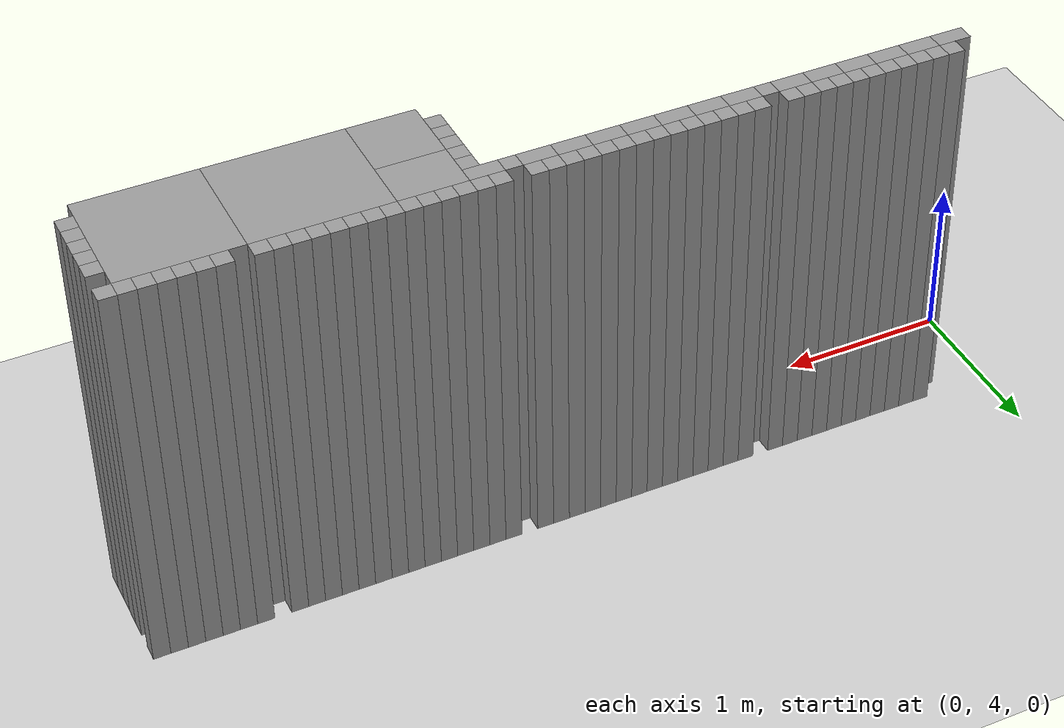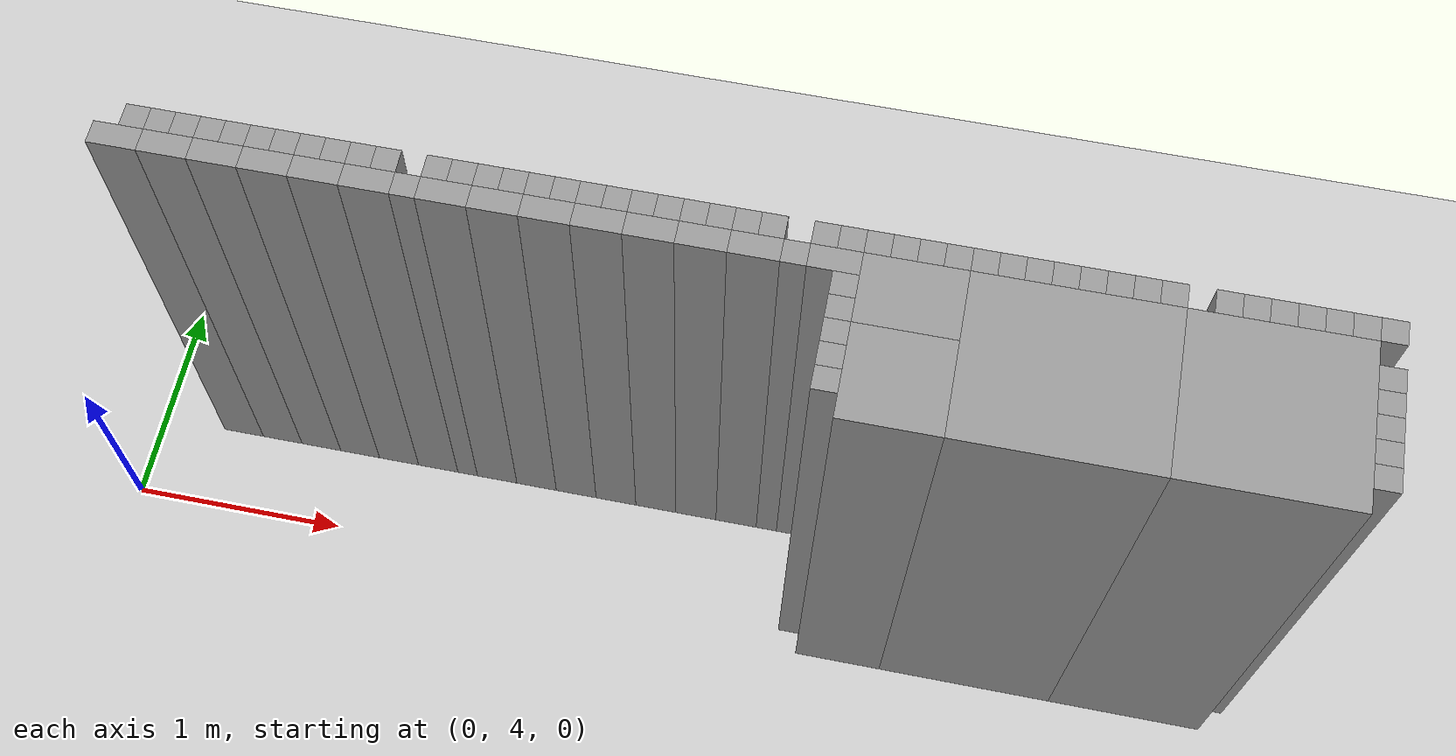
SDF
<sdf version="1.6">
 <world name="default">
  <include><uri>model://sun</uri></include>
  <include><uri>model://ground_plane</uri></include>
  <model name="stage_test">
   <static>1</static>
   <pose>-12 -12 0 0 0 0</pose>
   <link name="Wall_530">
    <pose>12.45 16.55 0 0 0 0</pose>
    <collision name="Wall_530_collision">
     <pose>0 0 1.25 0 0 0</pose>
     <geometry><box><size>0.09999999999999964 0.10000000000000142 2.5</size></box></geometry>
    </collision>
    <visual name="Wall_530_visual">
     <pose>0 0 1.25 0 0 0</pose>
     <geometry><box><size>0.09999999999999964 0.10000000000000142 2.5</size></box></geometry>
     <material>
      <script><uri>file://media/materials/scripts/gazebo.material</uri><name>Gazebo/Grey</name></script>
      <ambient>1 1 1 1</ambient>
     </material>
    </visual>
   </link>
   <link name="Wall_531">
    <pose>12.55 16.55 0 0 0 0</pose>
    <collision name="Wall_531_collision">
     <pose>0 0 1.25 0 0 0</pose>
     <geometry><box><size>0.10000000000000142 0.10000000000000142 2.5</size></box></geometry>
    </collision>
    <visual name="Wall_531_visual">
     <pose>0 0 1.25 0 0 0</pose>
     <geometry><box><size>0.10000000000000142 0.10000000000000142 2.5</size></box></geometry>
     <material>
      <script><uri>file://media/materials/scripts/gazebo.material</uri><name>Gazebo/Grey</name></script>
      <ambient>1 1 1 1</ambient>
     </material>
    </visual>
   </link>
   <link name="Wall_532">
    <pose>12.650000000000002 16.55 0 0 0 0</pose>
    <collision name="Wall_532_collision">
     <pose>0 0 1.25 0 0 0</pose>
     <geometry><box><size>0.09999999999999964 0.10000000000000142 2.5</size></box></geometry>
    </collision>
    <visual name="Wall_532_visual">
     <pose>0 0 1.25 0 0 0</pose>
     <geometry><box><size>0.09999999999999964 0.10000000000000142 2.5</size></box></geometry>
     <material>
      <script><uri>file://media/materials/scripts/gazebo.material</uri><name>Gazebo/Grey</name></script>
      <ambient>1 1 1 1</ambient>
     </material>
    </visual>
   </link>
   <link name="Wall_533">
    <pose>12.75 16.55 0 0 0 0</pose>
    <collision name="Wall_533_collision">
     <pose>0 0 1.25 0 0 0</pose>
     <geometry><box><size>0.09999999999999964 0.10000000000000142 2.5</size></box></geometry>
    </collision>
    <visual name="Wall_533_visual">
     <pose>0 0 1.25 0 0 0</pose>
     <geometry><box><size>0.09999999999999964 0.10000000000000142 2.5</size></box></geometry>
     <material>
      <script><uri>file://media/materials/scripts/gazebo.material</uri><name>Gazebo/Grey</name></script>
      <ambient>1 1 1 1</ambient>
     </material>
    </visual>
   </link>
   <link name="Wall_534">
    <pose>12.850000000000001 16.55 0 0 0 0</pose>
    <collision name="Wall_534_collision">
     <pose>0 0 1.25 0 0 0</pose>
     <geometry><box><size>0.09999999999999964 0.10000000000000142 2.5</size></box></geometry>
    </collision>
    <visual name="Wall_534_visual">
     <pose>0 0 1.25 0 0 0</pose>
     <geometry><box><size>0.09999999999999964 0.10000000000000142 2.5</size></box></geometry>
     <material>
      <script><uri>file://media/materials/scripts/gazebo.material</uri><name>Gazebo/Grey</name></script>
      <ambient>1 1 1 1</ambient>
     </material>
    </visual>
   </link>
   <link name="Wall_535">
    <pose>12.95 16.55 0 0 0 0</pose>
    <collision name="Wall_535_collision">
     <pose>0 0 1.25 0 0 0</pose>
     <geometry><box><size>0.09999999999999964 0.10000000000000142 2.5</size></box></geometry>
    </collision>
    <visual name="Wall_535_visual">
     <pose>0 0 1.25 0 0 0</pose>
     <geometry><box><size>0.09999999999999964 0.10000000000000142 2.5</size></box></geometry>
     <material>
      <script><uri>file://media/materials/scripts/gazebo.material</uri><name>Gazebo/Grey</name></script>
      <ambient>1 1 1 1</ambient>
     </material>
    </visual>
   </link>
   <link name="Wall_536">
    <pose>13.05 16.55 0 0 0 0</pose>
    <collision name="Wall_536_collision">
     <pose>0 0 1.25 0 0 0</pose>
     <geometry><box><size>0.10000000000000142 0.10000000000000142 2.5</size></box></geometry>
    </collision>
    <visual name="Wall_536_visual">
     <pose>0 0 1.25 0 0 0</pose>
     <geometry><box><size>0.10000000000000142 0.10000000000000142 2.5</size></box></geometry>
     <material>
      <script><uri>file://media/materials/scripts/gazebo.material</uri><name>Gazebo/Grey</name></script>
      <ambient>1 1 1 1</ambient>
     </material>
    </visual>
   </link>
   <link name="Wall_537">
    <pose>13.150000000000002 16.55 0 0 0 0</pose>
    <collision name="Wall_537_collision">
     <pose>0 0 1.25 0 0 0</pose>
     <geometry><box><size>0.09999999999999964 0.10000000000000142 2.5</size></box></geometry>
    </collision>
    <visual name="Wall_537_visual">
     <pose>0 0 1.25 0 0 0</pose>
     <geometry><box><size>0.09999999999999964 0.10000000000000142 2.5</size></box></geometry>
     <material>
      <script><uri>file://media/materials/scripts/gazebo.material</uri><name>Gazebo/Grey</name></script>
      <ambient>1 1 1 1</ambient>
     </material>
    </visual>
   </link>
   <link name="Wall_538">
    <pose>13.25 16.55 0 0 0 0</pose>
    <collision name="Wall_538_collision">
     <pose>0 0 1.25 0 0 0</pose>
     <geometry><box><size>0.09999999999999964 0.10000000000000142 2.5</size></box></geometry>
    </collision>
    <visual name="Wall_538_visual">
     <pose>0 0 1.25 0 0 0</pose>
     <geometry><box><size>0.09999999999999964 0.10000000000000142 2.5</size></box></geometry>
     <material>
      <script><uri>file://media/materials/scripts/gazebo.material</uri><name>Gazebo/Grey</name></script>
      <ambient>1 1 1 1</ambient>
     </material>
    </visual>
   </link>
   <link name="Wall_539">
    <pose>13.350000000000001 16.55 0 0 0 0</pose>
    <collision name="Wall_539_collision">
     <pose>0 0 1.25 0 0 0</pose>
     <geometry><box><size>0.09999999999999964 0.10000000000000142 2.5</size></box></geometry>
    </collision>
    <visual name="Wall_539_visual">
     <pose>0 0 1.25 0 0 0</pose>
     <geometry><box><size>0.09999999999999964 0.10000000000000142 2.5</size></box></geometry>
     <material>
      <script><uri>file://media/materials/scripts/gazebo.material</uri><name>Gazebo/Grey</name></script>
      <ambient>1 1 1 1</ambient>
     </material>
    </visual>
   </link>
   <link name="Wall_540">
    <pose>13.45 16.55 0 0 0 0</pose>
    <collision name="Wall_540_collision">
     <pose>0 0 1.25 0 0 0</pose>
     <geometry><box><size>0.09999999999999964 0.10000000000000142 2.5</size></box></geometry>
    </collision>
    <visual name="Wall_540_visual">
     <pose>0 0 1.25 0 0 0</pose>
     <geometry><box><size>0.09999999999999964 0.10000000000000142 2.5</size></box></geometry>
     <material>
      <script><uri>file://media/materials/scripts/gazebo.material</uri><name>Gazebo/Grey</name></script>
      <ambient>1 1 1 1</ambient>
     </material>
    </visual>
   </link>
   <link name="Wall_543">
    <pose>12.399999999999999 16.450000000000003 0 0 0 0</pose>
    <collision name="Wall_543_collision">
     <pose>0 0 1.25 0 0 0</pose>
     <geometry><box><size>0.1999999999999993 0.09999999999999787 2.5</size></box></geometry>
    </collision>
    <visual name="Wall_543_visual">
     <pose>0 0 1.25 0 0 0</pose>
     <geometry><box><size>0.1999999999999993 0.09999999999999787 2.5</size></box></geometry>
     <material>
      <script><uri>file://media/materials/scripts/gazebo.material</uri><name>Gazebo/Grey</name></script>
      <ambient>1 1 1 1</ambient>
     </material>
    </visual>
   </link>
   <link name="Wall_544">
    <pose>12.600000000000001 16.450000000000003 0 0 0 0</pose>
    <collision name="Wall_544_collision">
     <pose>0 0 1.25 0 0 0</pose>
     <geometry><box><size>0.20000000000000107 0.09999999999999787 2.5</size></box></geometry>
    </collision>
    <visual name="Wall_544_visual">
     <pose>0 0 1.25 0 0 0</pose>
     <geometry><box><size>0.20000000000000107 0.09999999999999787 2.5</size></box></geometry>
     <material>
      <script><uri>file://media/materials/scripts/gazebo.material</uri><name>Gazebo/Grey</name></script>
      <ambient>1 1 1 1</ambient>
     </material>
    </visual>
   </link>
   <link name="Wall_545">
    <pose>12.8 16.450000000000003 0 0 0 0</pose>
    <collision name="Wall_545_collision">
     <pose>0 0 1.25 0 0 0</pose>
     <geometry><box><size>0.1999999999999993 0.09999999999999787 2.5</size></box></geometry>
    </collision>
    <visual name="Wall_545_visual">
     <pose>0 0 1.25 0 0 0</pose>
     <geometry><box><size>0.1999999999999993 0.09999999999999787 2.5</size></box></geometry>
     <material>
      <script><uri>file://media/materials/scripts/gazebo.material</uri><name>Gazebo/Grey</name></script>
      <ambient>1 1 1 1</ambient>
     </material>
    </visual>
   </link>
   <link name="Wall_546">
    <pose>13.0 16.450000000000003 0 0 0 0</pose>
    <collision name="Wall_546_collision">
     <pose>0 0 1.25 0 0 0</pose>
     <geometry><box><size>0.20000000000000107 0.09999999999999787 2.5</size></box></geometry>
    </collision>
    <visual name="Wall_546_visual">
     <pose>0 0 1.25 0 0 0</pose>
     <geometry><box><size>0.20000000000000107 0.09999999999999787 2.5</size></box></geometry>
     <material>
      <script><uri>file://media/materials/scripts/gazebo.material</uri><name>Gazebo/Grey</name></script>
      <ambient>1 1 1 1</ambient>
     </material>
    </visual>
   </link>
   <link name="Wall_547">
    <pose>13.200000000000001 16.450000000000003 0 0 0 0</pose>
    <collision name="Wall_547_collision">
     <pose>0 0 1.25 0 0 0</pose>
     <geometry><box><size>0.1999999999999993 0.09999999999999787 2.5</size></box></geometry>
    </collision>
    <visual name="Wall_547_visual">
     <pose>0 0 1.25 0 0 0</pose>
     <geometry><box><size>0.1999999999999993 0.09999999999999787 2.5</size></box></geometry>
     <material>
      <script><uri>file://media/materials/scripts/gazebo.material</uri><name>Gazebo/Grey</name></script>
      <ambient>1 1 1 1</ambient>
     </material>
    </visual>
   </link>
   <link name="Wall_548">
    <pose>13.399999999999999 16.450000000000003 0 0 0 0</pose>
    <collision name="Wall_548_collision">
     <pose>0 0 1.25 0 0 0</pose>
     <geometry><box><size>0.1999999999999993 0.09999999999999787 2.5</size></box></geometry>
    </collision>
    <visual name="Wall_548_visual">
     <pose>0 0 1.25 0 0 0</pose>
     <geometry><box><size>0.1999999999999993 0.09999999999999787 2.5</size></box></geometry>
     <material>
      <script><uri>file://media/materials/scripts/gazebo.material</uri><name>Gazebo/Grey</name></script>
      <ambient>1 1 1 1</ambient>
     </material>
    </visual>
   </link>
   <link name="Wall_549">
    <pose>13.650000000000002 16.55 0 0 0 0</pose>
    <collision name="Wall_549_collision">
     <pose>0 0 1.25 0 0 0</pose>
     <geometry><box><size>0.09999999999999964 0.10000000000000142 2.5</size></box></geometry>
    </collision>
    <visual name="Wall_549_visual">
     <pose>0 0 1.25 0 0 0</pose>
     <geometry><box><size>0.09999999999999964 0.10000000000000142 2.5</size></box></geometry>
     <material>
      <script><uri>file://media/materials/scripts/gazebo.material</uri><name>Gazebo/Grey</name></script>
      <ambient>1 1 1 1</ambient>
     </material>
    </visual>
   </link>
   <link name="Wall_550">
    <pose>13.75 16.55 0 0 0 0</pose>
    <collision name="Wall_550_collision">
     <pose>0 0 1.25 0 0 0</pose>
     <geometry><box><size>0.09999999999999964 0.10000000000000142 2.5</size></box></geometry>
    </collision>
    <visual name="Wall_550_visual">
     <pose>0 0 1.25 0 0 0</pose>
     <geometry><box><size>0.09999999999999964 0.10000000000000142 2.5</size></box></geometry>
     <material>
      <script><uri>file://media/materials/scripts/gazebo.material</uri><name>Gazebo/Grey</name></script>
      <ambient>1 1 1 1</ambient>
     </material>
    </visual>
   </link>
   <link name="Wall_551">
    <pose>13.850000000000001 16.55 0 0 0 0</pose>
    <collision name="Wall_551_collision">
     <pose>0 0 1.25 0 0 0</pose>
     <geometry><box><size>0.09999999999999964 0.10000000000000142 2.5</size></box></geometry>
    </collision>
    <visual name="Wall_551_visual">
     <pose>0 0 1.25 0 0 0</pose>
     <geometry><box><size>0.09999999999999964 0.10000000000000142 2.5</size></box></geometry>
     <material>
      <script><uri>file://media/materials/scripts/gazebo.material</uri><name>Gazebo/Grey</name></script>
      <ambient>1 1 1 1</ambient>
     </material>
    </visual>
   </link>
   <link name="Wall_552">
    <pose>13.95 16.55 0 0 0 0</pose>
    <collision name="Wall_552_collision">
     <pose>0 0 1.25 0 0 0</pose>
     <geometry><box><size>0.09999999999999964 0.10000000000000142 2.5</size></box></geometry>
    </collision>
    <visual name="Wall_552_visual">
     <pose>0 0 1.25 0 0 0</pose>
     <geometry><box><size>0.09999999999999964 0.10000000000000142 2.5</size></box></geometry>
     <material>
      <script><uri>file://media/materials/scripts/gazebo.material</uri><name>Gazebo/Grey</name></script>
      <ambient>1 1 1 1</ambient>
     </material>
    </visual>
   </link>
   <link name="Wall_553">
    <pose>14.05 16.55 0 0 0 0</pose>
    <collision name="Wall_553_collision">
     <pose>0 0 1.25 0 0 0</pose>
     <geometry><box><size>0.10000000000000142 0.10000000000000142 2.5</size></box></geometry>
    </collision>
    <visual name="Wall_553_visual">
     <pose>0 0 1.25 0 0 0</pose>
     <geometry><box><size>0.10000000000000142 0.10000000000000142 2.5</size></box></geometry>
     <material>
      <script><uri>file://media/materials/scripts/gazebo.material</uri><name>Gazebo/Grey</name></script>
      <ambient>1 1 1 1</ambient>
     </material>
    </visual>
   </link>
   <link name="Wall_554">
    <pose>14.150000000000002 16.55 0 0 0 0</pose>
    <collision name="Wall_554_collision">
     <pose>0 0 1.25 0 0 0</pose>
     <geometry><box><size>0.09999999999999964 0.10000000000000142 2.5</size></box></geometry>
    </collision>
    <visual name="Wall_554_visual">
     <pose>0 0 1.25 0 0 0</pose>
     <geometry><box><size>0.09999999999999964 0.10000000000000142 2.5</size></box></geometry>
     <material>
      <script><uri>file://media/materials/scripts/gazebo.material</uri><name>Gazebo/Grey</name></script>
      <ambient>1 1 1 1</ambient>
     </material>
    </visual>
   </link>
   <link name="Wall_555">
    <pose>14.25 16.55 0 0 0 0</pose>
    <collision name="Wall_555_collision">
     <pose>0 0 1.25 0 0 0</pose>
     <geometry><box><size>0.09999999999999964 0.10000000000000142 2.5</size></box></geometry>
    </collision>
    <visual name="Wall_555_visual">
     <pose>0 0 1.25 0 0 0</pose>
     <geometry><box><size>0.09999999999999964 0.10000000000000142 2.5</size></box></geometry>
     <material>
      <script><uri>file://media/materials/scripts/gazebo.material</uri><name>Gazebo/Grey</name></script>
      <ambient>1 1 1 1</ambient>
     </material>
    </visual>
   </link>
   <link name="Wall_556">
    <pose>14.350000000000001 16.55 0 0 0 0</pose>
    <collision name="Wall_556_collision">
     <pose>0 0 1.25 0 0 0</pose>
     <geometry><box><size>0.09999999999999964 0.10000000000000142 2.5</size></box></geometry>
    </collision>
    <visual name="Wall_556_visual">
     <pose>0 0 1.25 0 0 0</pose>
     <geometry><box><size>0.09999999999999964 0.10000000000000142 2.5</size></box></geometry>
     <material>
      <script><uri>file://media/materials/scripts/gazebo.material</uri><name>Gazebo/Grey</name></script>
      <ambient>1 1 1 1</ambient>
     </material>
    </visual>
   </link>
   <link name="Wall_557">
    <pose>14.45 16.55 0 0 0 0</pose>
    <collision name="Wall_557_collision">
     <pose>0 0 1.25 0 0 0</pose>
     <geometry><box><size>0.09999999999999964 0.10000000000000142 2.5</size></box></geometry>
    </collision>
    <visual name="Wall_557_visual">
     <pose>0 0 1.25 0 0 0</pose>
     <geometry><box><size>0.09999999999999964 0.10000000000000142 2.5</size></box></geometry>
     <material>
      <script><uri>file://media/materials/scripts/gazebo.material</uri><name>Gazebo/Grey</name></script>
      <ambient>1 1 1 1</ambient>
     </material>
    </visual>
   </link>
   <link name="Wall_558">
    <pose>14.55 16.55 0 0 0 0</pose>
    <collision name="Wall_558_collision">
     <pose>0 0 1.25 0 0 0</pose>
     <geometry><box><size>0.10000000000000142 0.10000000000000142 2.5</size></box></geometry>
    </collision>
    <visual name="Wall_558_visual">
     <pose>0 0 1.25 0 0 0</pose>
     <geometry><box><size>0.10000000000000142 0.10000000000000142 2.5</size></box></geometry>
     <material>
      <script><uri>file://media/materials/scripts/gazebo.material</uri><name>Gazebo/Grey</name></script>
      <ambient>1 1 1 1</ambient>
     </material>
    </visual>
   </link>
   <link name="Wall_559">
    <pose>14.650000000000002 16.55 0 0 0 0</pose>
    <collision name="Wall_559_collision">
     <pose>0 0 1.25 0 0 0</pose>
     <geometry><box><size>0.09999999999999964 0.10000000000000142 2.5</size></box></geometry>
    </collision>
    <visual name="Wall_559_visual">
     <pose>0 0 1.25 0 0 0</pose>
     <geometry><box><size>0.09999999999999964 0.10000000000000142 2.5</size></box></geometry>
     <material>
      <script><uri>file://media/materials/scripts/gazebo.material</uri><name>Gazebo/Grey</name></script>
      <ambient>1 1 1 1</ambient>
     </material>
    </visual>
   </link>
   <link name="Wall_560">
    <pose>14.75 16.55 0 0 0 0</pose>
    <collision name="Wall_560_collision">
     <pose>0 0 1.25 0 0 0</pose>
     <geometry><box><size>0.09999999999999964 0.10000000000000142 2.5</size></box></geometry>
    </collision>
    <visual name="Wall_560_visual">
     <pose>0 0 1.25 0 0 0</pose>
     <geometry><box><size>0.09999999999999964 0.10000000000000142 2.5</size></box></geometry>
     <material>
      <script><uri>file://media/materials/scripts/gazebo.material</uri><name>Gazebo/Grey</name></script>
      <ambient>1 1 1 1</ambient>
     </material>
    </visual>
   </link>
   <link name="Wall_561">
    <pose>14.850000000000001 16.55 0 0 0 0</pose>
    <collision name="Wall_561_collision">
     <pose>0 0 1.25 0 0 0</pose>
     <geometry><box><size>0.09999999999999964 0.10000000000000142 2.5</size></box></geometry>
    </collision>
    <visual name="Wall_561_visual">
     <pose>0 0 1.25 0 0 0</pose>
     <geometry><box><size>0.09999999999999964 0.10000000000000142 2.5</size></box></geometry>
     <material>
      <script><uri>file://media/materials/scripts/gazebo.material</uri><name>Gazebo/Grey</name></script>
      <ambient>1 1 1 1</ambient>
     </material>
    </visual>
   </link>
   <link name="Wall_562">
    <pose>14.95 16.55 0 0 0 0</pose>
    <collision name="Wall_562_collision">
     <pose>0 0 1.25 0 0 0</pose>
     <geometry><box><size>0.09999999999999964 0.10000000000000142 2.5</size></box></geometry>
    </collision>
    <visual name="Wall_562_visual">
     <pose>0 0 1.25 0 0 0</pose>
     <geometry><box><size>0.09999999999999964 0.10000000000000142 2.5</size></box></geometry>
     <material>
      <script><uri>file://media/materials/scripts/gazebo.material</uri><name>Gazebo/Grey</name></script>
      <ambient>1 1 1 1</ambient>
     </material>
    </visual>
   </link>
   <link name="Wall_563">
    <pose>13.55 16.450000000000003 0 0 0 0</pose>
    <collision name="Wall_563_collision">
     <pose>0 0 1.25 0 0 0</pose>
     <geometry><box><size>0.10000000000000142 0.09999999999999787 2.5</size></box></geometry>
    </collision>
    <visual name="Wall_563_visual">
     <pose>0 0 1.25 0 0 0</pose>
     <geometry><box><size>0.10000000000000142 0.09999999999999787 2.5</size></box></geometry>
     <material>
      <script><uri>file://media/materials/scripts/gazebo.material</uri><name>Gazebo/Grey</name></script>
      <ambient>1 1 1 1</ambient>
     </material>
    </visual>
   </link>
   <link name="Wall_564">
    <pose>13.700000000000001 16.450000000000003 0 0 0 0</pose>
    <collision name="Wall_564_collision">
     <pose>0 0 1.25 0 0 0</pose>
     <geometry><box><size>0.1999999999999993 0.09999999999999787 2.5</size></box></geometry>
    </collision>
    <visual name="Wall_564_visual">
     <pose>0 0 1.25 0 0 0</pose>
     <geometry><box><size>0.1999999999999993 0.09999999999999787 2.5</size></box></geometry>
     <material>
      <script><uri>file://media/materials/scripts/gazebo.material</uri><name>Gazebo/Grey</name></script>
      <ambient>1 1 1 1</ambient>
     </material>
    </visual>
   </link>
   <link name="Wall_565">
    <pose>13.899999999999999 16.450000000000003 0 0 0 0</pose>
    <collision name="Wall_565_collision">
     <pose>0 0 1.25 0 0 0</pose>
     <geometry><box><size>0.1999999999999993 0.09999999999999787 2.5</size></box></geometry>
    </collision>
    <visual name="Wall_565_visual">
     <pose>0 0 1.25 0 0 0</pose>
     <geometry><box><size>0.1999999999999993 0.09999999999999787 2.5</size></box></geometry>
     <material>
      <script><uri>file://media/materials/scripts/gazebo.material</uri><name>Gazebo/Grey</name></script>
      <ambient>1 1 1 1</ambient>
     </material>
    </visual>
   </link>
   <link name="Wall_566">
    <pose>14.100000000000001 16.450000000000003 0 0 0 0</pose>
    <collision name="Wall_566_collision">
     <pose>0 0 1.25 0 0 0</pose>
     <geometry><box><size>0.20000000000000107 0.09999999999999787 2.5</size></box></geometry>
    </collision>
    <visual name="Wall_566_visual">
     <pose>0 0 1.25 0 0 0</pose>
     <geometry><box><size>0.20000000000000107 0.09999999999999787 2.5</size></box></geometry>
     <material>
      <script><uri>file://media/materials/scripts/gazebo.material</uri><name>Gazebo/Grey</name></script>
      <ambient>1 1 1 1</ambient>
     </material>
    </visual>
   </link>
   <link name="Wall_567">
    <pose>14.3 16.450000000000003 0 0 0 0</pose>
    <collision name="Wall_567_collision">
     <pose>0 0 1.25 0 0 0</pose>
     <geometry><box><size>0.1999999999999993 0.09999999999999787 2.5</size></box></geometry>
    </collision>
    <visual name="Wall_567_visual">
     <pose>0 0 1.25 0 0 0</pose>
     <geometry><box><size>0.1999999999999993 0.09999999999999787 2.5</size></box></geometry>
     <material>
      <script><uri>file://media/materials/scripts/gazebo.material</uri><name>Gazebo/Grey</name></script>
      <ambient>1 1 1 1</ambient>
     </material>
    </visual>
   </link>
   <link name="Wall_568">
    <pose>14.5 16.450000000000003 0 0 0 0</pose>
    <collision name="Wall_568_collision">
     <pose>0 0 1.25 0 0 0</pose>
     <geometry><box><size>0.20000000000000107 0.09999999999999787 2.5</size></box></geometry>
    </collision>
    <visual name="Wall_568_visual">
     <pose>0 0 1.25 0 0 0</pose>
     <geometry><box><size>0.20000000000000107 0.09999999999999787 2.5</size></box></geometry>
     <material>
      <script><uri>file://media/materials/scripts/gazebo.material</uri><name>Gazebo/Grey</name></script>
      <ambient>1 1 1 1</ambient>
     </material>
    </visual>
   </link>
   <link name="Wall_569">
    <pose>14.700000000000001 16.450000000000003 0 0 0 0</pose>
    <collision name="Wall_569_collision">
     <pose>0 0 1.25 0 0 0</pose>
     <geometry><box><size>0.1999999999999993 0.09999999999999787 2.5</size></box></geometry>
    </collision>
    <visual name="Wall_569_visual">
     <pose>0 0 1.25 0 0 0</pose>
     <geometry><box><size>0.1999999999999993 0.09999999999999787 2.5</size></box></geometry>
     <material>
      <script><uri>file://media/materials/scripts/gazebo.material</uri><name>Gazebo/Grey</name></script>
      <ambient>1 1 1 1</ambient>
     </material>
    </visual>
   </link>
   <link name="Wall_570">
    <pose>14.899999999999999 16.450000000000003 0 0 0 0</pose>
    <collision name="Wall_570_collision">
     <pose>0 0 1.25 0 0 0</pose>
     <geometry><box><size>0.1999999999999993 0.09999999999999787 2.5</size></box></geometry>
    </collision>
    <visual name="Wall_570_visual">
     <pose>0 0 1.25 0 0 0</pose>
     <geometry><box><size>0.1999999999999993 0.09999999999999787 2.5</size></box></geometry>
     <material>
      <script><uri>file://media/materials/scripts/gazebo.material</uri><name>Gazebo/Grey</name></script>
      <ambient>1 1 1 1</ambient>
     </material>
    </visual>
   </link>
   <link name="Wall_595">
    <pose>15.150000000000002 16.55 0 0 0 0</pose>
    <collision name="Wall_595_collision">
     <pose>0 0 1.25 0 0 0</pose>
     <geometry><box><size>0.09999999999999964 0.10000000000000142 2.5</size></box></geometry>
    </collision>
    <visual name="Wall_595_visual">
     <pose>0 0 1.25 0 0 0</pose>
     <geometry><box><size>0.09999999999999964 0.10000000000000142 2.5</size></box></geometry>
     <material>
      <script><uri>file://media/materials/scripts/gazebo.material</uri><name>Gazebo/Grey</name></script>
      <ambient>1 1 1 1</ambient>
     </material>
    </visual>
   </link>
   <link name="Wall_596">
    <pose>15.25 16.55 0 0 0 0</pose>
    <collision name="Wall_596_collision">
     <pose>0 0 1.25 0 0 0</pose>
     <geometry><box><size>0.09999999999999964 0.10000000000000142 2.5</size></box></geometry>
    </collision>
    <visual name="Wall_596_visual">
     <pose>0 0 1.25 0 0 0</pose>
     <geometry><box><size>0.09999999999999964 0.10000000000000142 2.5</size></box></geometry>
     <material>
      <script><uri>file://media/materials/scripts/gazebo.material</uri><name>Gazebo/Grey</name></script>
      <ambient>1 1 1 1</ambient>
     </material>
    </visual>
   </link>
   <link name="Wall_597">
    <pose>15.350000000000001 16.55 0 0 0 0</pose>
    <collision name="Wall_597_collision">
     <pose>0 0 1.25 0 0 0</pose>
     <geometry><box><size>0.09999999999999964 0.10000000000000142 2.5</size></box></geometry>
    </collision>
    <visual name="Wall_597_visual">
     <pose>0 0 1.25 0 0 0</pose>
     <geometry><box><size>0.09999999999999964 0.10000000000000142 2.5</size></box></geometry>
     <material>
      <script><uri>file://media/materials/scripts/gazebo.material</uri><name>Gazebo/Grey</name></script>
      <ambient>1 1 1 1</ambient>
     </material>
    </visual>
   </link>
   <link name="Wall_598">
    <pose>15.45 16.55 0 0 0 0</pose>
    <collision name="Wall_598_collision">
     <pose>0 0 1.25 0 0 0</pose>
     <geometry><box><size>0.09999999999999964 0.10000000000000142 2.5</size></box></geometry>
    </collision>
    <visual name="Wall_598_visual">
     <pose>0 0 1.25 0 0 0</pose>
     <geometry><box><size>0.09999999999999964 0.10000000000000142 2.5</size></box></geometry>
     <material>
      <script><uri>file://media/materials/scripts/gazebo.material</uri><name>Gazebo/Grey</name></script>
      <ambient>1 1 1 1</ambient>
     </material>
    </visual>
   </link>
   <link name="Wall_599">
    <pose>15.55 16.55 0 0 0 0</pose>
    <collision name="Wall_599_collision">
     <pose>0 0 1.25 0 0 0</pose>
     <geometry><box><size>0.10000000000000142 0.10000000000000142 2.5</size></box></geometry>
    </collision>
    <visual name="Wall_599_visual">
     <pose>0 0 1.25 0 0 0</pose>
     <geometry><box><size>0.10000000000000142 0.10000000000000142 2.5</size></box></geometry>
     <material>
      <script><uri>file://media/materials/scripts/gazebo.material</uri><name>Gazebo/Grey</name></script>
      <ambient>1 1 1 1</ambient>
     </material>
    </visual>
   </link>
   <link name="Wall_600">
    <pose>15.650000000000002 16.55 0 0 0 0</pose>
    <collision name="Wall_600_collision">
     <pose>0 0 1.25 0 0 0</pose>
     <geometry><box><size>0.09999999999999964 0.10000000000000142 2.5</size></box></geometry>
    </collision>
    <visual name="Wall_600_visual">
     <pose>0 0 1.25 0 0 0</pose>
     <geometry><box><size>0.09999999999999964 0.10000000000000142 2.5</size></box></geometry>
     <material>
      <script><uri>file://media/materials/scripts/gazebo.material</uri><name>Gazebo/Grey</name></script>
      <ambient>1 1 1 1</ambient>
     </material>
    </visual>
   </link>
   <link name="Wall_601">
    <pose>15.75 16.55 0 0 0 0</pose>
    <collision name="Wall_601_collision">
     <pose>0 0 1.25 0 0 0</pose>
     <geometry><box><size>0.09999999999999964 0.10000000000000142 2.5</size></box></geometry>
    </collision>
    <visual name="Wall_601_visual">
     <pose>0 0 1.25 0 0 0</pose>
     <geometry><box><size>0.09999999999999964 0.10000000000000142 2.5</size></box></geometry>
     <material>
      <script><uri>file://media/materials/scripts/gazebo.material</uri><name>Gazebo/Grey</name></script>
      <ambient>1 1 1 1</ambient>
     </material>
    </visual>
   </link>
   <link name="Wall_602">
    <pose>15.850000000000001 16.55 0 0 0 0</pose>
    <collision name="Wall_602_collision">
     <pose>0 0 1.25 0 0 0</pose>
     <geometry><box><size>0.09999999999999964 0.10000000000000142 2.5</size></box></geometry>
    </collision>
    <visual name="Wall_602_visual">
     <pose>0 0 1.25 0 0 0</pose>
     <geometry><box><size>0.09999999999999964 0.10000000000000142 2.5</size></box></geometry>
     <material>
      <script><uri>file://media/materials/scripts/gazebo.material</uri><name>Gazebo/Grey</name></script>
      <ambient>1 1 1 1</ambient>
     </material>
    </visual>
   </link>
   <link name="Wall_603">
    <pose>15.95 16.55 0 0 0 0</pose>
    <collision name="Wall_603_collision">
     <pose>0 0 1.25 0 0 0</pose>
     <geometry><box><size>0.09999999999999964 0.10000000000000142 2.5</size></box></geometry>
    </collision>
    <visual name="Wall_603_visual">
     <pose>0 0 1.25 0 0 0</pose>
     <geometry><box><size>0.09999999999999964 0.10000000000000142 2.5</size></box></geometry>
     <material>
      <script><uri>file://media/materials/scripts/gazebo.material</uri><name>Gazebo/Grey</name></script>
      <ambient>1 1 1 1</ambient>
     </material>
    </visual>
   </link>
   <link name="Wall_604">
    <pose>16.05 16.55 0 0 0 0</pose>
    <collision name="Wall_604_collision">
     <pose>0 0 1.25 0 0 0</pose>
     <geometry><box><size>0.10000000000000142 0.10000000000000142 2.5</size></box></geometry>
    </collision>
    <visual name="Wall_604_visual">
     <pose>0 0 1.25 0 0 0</pose>
     <geometry><box><size>0.10000000000000142 0.10000000000000142 2.5</size></box></geometry>
     <material>
      <script><uri>file://media/materials/scripts/gazebo.material</uri><name>Gazebo/Grey</name></script>
      <ambient>1 1 1 1</ambient>
     </material>
    </visual>
   </link>
   <link name="Wall_605">
    <pose>16.15 16.55 0 0 0 0</pose>
    <collision name="Wall_605_collision">
     <pose>0 0 1.25 0 0 0</pose>
     <geometry><box><size>0.09999999999999787 0.10000000000000142 2.5</size></box></geometry>
    </collision>
    <visual name="Wall_605_visual">
     <pose>0 0 1.25 0 0 0</pose>
     <geometry><box><size>0.09999999999999787 0.10000000000000142 2.5</size></box></geometry>
     <material>
      <script><uri>file://media/materials/scripts/gazebo.material</uri><name>Gazebo/Grey</name></script>
      <ambient>1 1 1 1</ambient>
     </material>
    </visual>
   </link>
   <link name="Wall_606">
    <pose>16.25 16.55 0 0 0 0</pose>
    <collision name="Wall_606_collision">
     <pose>0 0 1.25 0 0 0</pose>
     <geometry><box><size>0.10000000000000142 0.10000000000000142 2.5</size></box></geometry>
    </collision>
    <visual name="Wall_606_visual">
     <pose>0 0 1.25 0 0 0</pose>
     <geometry><box><size>0.10000000000000142 0.10000000000000142 2.5</size></box></geometry>
     <material>
      <script><uri>file://media/materials/scripts/gazebo.material</uri><name>Gazebo/Grey</name></script>
      <ambient>1 1 1 1</ambient>
     </material>
    </visual>
   </link>
   <link name="Wall_607">
    <pose>16.35 16.55 0 0 0 0</pose>
    <collision name="Wall_607_collision">
     <pose>0 0 1.25 0 0 0</pose>
     <geometry><box><size>0.10000000000000142 0.10000000000000142 2.5</size></box></geometry>
    </collision>
    <visual name="Wall_607_visual">
     <pose>0 0 1.25 0 0 0</pose>
     <geometry><box><size>0.10000000000000142 0.10000000000000142 2.5</size></box></geometry>
     <material>
      <script><uri>file://media/materials/scripts/gazebo.material</uri><name>Gazebo/Grey</name></script>
      <ambient>1 1 1 1</ambient>
     </material>
    </visual>
   </link>
   <link name="Wall_608">
    <pose>16.450000000000003 16.55 0 0 0 0</pose>
    <collision name="Wall_608_collision">
     <pose>0 0 1.25 0 0 0</pose>
     <geometry><box><size>0.09999999999999787 0.10000000000000142 2.5</size></box></geometry>
    </collision>
    <visual name="Wall_608_visual">
     <pose>0 0 1.25 0 0 0</pose>
     <geometry><box><size>0.09999999999999787 0.10000000000000142 2.5</size></box></geometry>
     <material>
      <script><uri>file://media/materials/scripts/gazebo.material</uri><name>Gazebo/Grey</name></script>
      <ambient>1 1 1 1</ambient>
     </material>
    </visual>
   </link>
   <link name="Wall_609">
    <pose>15.05 16.450000000000003 0 0 0 0</pose>
    <collision name="Wall_609_collision">
     <pose>0 0 1.25 0 0 0</pose>
     <geometry><box><size>0.10000000000000142 0.09999999999999787 2.5</size></box></geometry>
    </collision>
    <visual name="Wall_609_visual">
     <pose>0 0 1.25 0 0 0</pose>
     <geometry><box><size>0.10000000000000142 0.09999999999999787 2.5</size></box></geometry>
     <material>
      <script><uri>file://media/materials/scripts/gazebo.material</uri><name>Gazebo/Grey</name></script>
      <ambient>1 1 1 1</ambient>
     </material>
    </visual>
   </link>
   <link name="Wall_610">
    <pose>15.200000000000001 16.450000000000003 0 0 0 0</pose>
    <collision name="Wall_610_collision">
     <pose>0 0 1.25 0 0 0</pose>
     <geometry><box><size>0.1999999999999993 0.09999999999999787 2.5</size></box></geometry>
    </collision>
    <visual name="Wall_610_visual">
     <pose>0 0 1.25 0 0 0</pose>
     <geometry><box><size>0.1999999999999993 0.09999999999999787 2.5</size></box></geometry>
     <material>
      <script><uri>file://media/materials/scripts/gazebo.material</uri><name>Gazebo/Grey</name></script>
      <ambient>1 1 1 1</ambient>
     </material>
    </visual>
   </link>
   <link name="Wall_611">
    <pose>15.25 16.35 0 0 0 0</pose>
    <collision name="Wall_611_collision">
     <pose>0 0 1.25 0 0 0</pose>
     <geometry><box><size>0.09999999999999964 0.10000000000000142 2.5</size></box></geometry>
    </collision>
    <visual name="Wall_611_visual">
     <pose>0 0 1.25 0 0 0</pose>
     <geometry><box><size>0.09999999999999964 0.10000000000000142 2.5</size></box></geometry>
     <material>
      <script><uri>file://media/materials/scripts/gazebo.material</uri><name>Gazebo/Grey</name></script>
      <ambient>1 1 1 1</ambient>
     </material>
    </visual>
   </link>
   <link name="Wall_612">
    <pose>15.25 16.25 0 0 0 0</pose>
    <collision name="Wall_612_collision">
     <pose>0 0 1.25 0 0 0</pose>
     <geometry><box><size>0.09999999999999964 0.10000000000000142 2.5</size></box></geometry>
    </collision>
    <visual name="Wall_612_visual">
     <pose>0 0 1.25 0 0 0</pose>
     <geometry><box><size>0.09999999999999964 0.10000000000000142 2.5</size></box></geometry>
     <material>
      <script><uri>file://media/materials/scripts/gazebo.material</uri><name>Gazebo/Grey</name></script>
      <ambient>1 1 1 1</ambient>
     </material>
    </visual>
   </link>
   <link name="Wall_613">
    <pose>15.25 16.150000000000002 0 0 0 0</pose>
    <collision name="Wall_613_collision">
     <pose>0 0 1.25 0 0 0</pose>
     <geometry><box><size>0.09999999999999964 0.09999999999999787 2.5</size></box></geometry>
    </collision>
    <visual name="Wall_613_visual">
     <pose>0 0 1.25 0 0 0</pose>
     <geometry><box><size>0.09999999999999964 0.09999999999999787 2.5</size></box></geometry>
     <material>
      <script><uri>file://media/materials/scripts/gazebo.material</uri><name>Gazebo/Grey</name></script>
      <ambient>1 1 1 1</ambient>
     </material>
    </visual>
   </link>
   <link name="Wall_614">
    <pose>15.25 16.05 0 0 0 0</pose>
    <collision name="Wall_614_collision">
     <pose>0 0 1.25 0 0 0</pose>
     <geometry><box><size>0.09999999999999964 0.10000000000000142 2.5</size></box></geometry>
    </collision>
    <visual name="Wall_614_visual">
     <pose>0 0 1.25 0 0 0</pose>
     <geometry><box><size>0.09999999999999964 0.10000000000000142 2.5</size></box></geometry>
     <material>
      <script><uri>file://media/materials/scripts/gazebo.material</uri><name>Gazebo/Grey</name></script>
      <ambient>1 1 1 1</ambient>
     </material>
    </visual>
   </link>
   <link name="Wall_615">
    <pose>15.25 15.95 0 0 0 0</pose>
    <collision name="Wall_615_collision">
     <pose>0 0 1.25 0 0 0</pose>
     <geometry><box><size>0.09999999999999964 0.09999999999999964 2.5</size></box></geometry>
    </collision>
    <visual name="Wall_615_visual">
     <pose>0 0 1.25 0 0 0</pose>
     <geometry><box><size>0.09999999999999964 0.09999999999999964 2.5</size></box></geometry>
     <material>
      <script><uri>file://media/materials/scripts/gazebo.material</uri><name>Gazebo/Grey</name></script>
      <ambient>1 1 1 1</ambient>
     </material>
    </visual>
   </link>
   <link name="Wall_617">
    <pose>15.5 16.35 0 0 0 0</pose>
    <collision name="Wall_617_collision">
     <pose>0 0 1.25 0 0 0</pose>
     <geometry><box><size>0.40000000000000036 0.3000000000000007 2.5</size></box></geometry>
    </collision>
    <visual name="Wall_617_visual">
     <pose>0 0 1.25 0 0 0</pose>
     <geometry><box><size>0.40000000000000036 0.3000000000000007 2.5</size></box></geometry>
     <material>
      <script><uri>file://media/materials/scripts/gazebo.material</uri><name>Gazebo/Grey</name></script>
      <ambient>1 1 1 1</ambient>
     </material>
    </visual>
   </link>
   <link name="Wall_618">
    <pose>15.5 16.0 0 0 0 0</pose>
    <collision name="Wall_618_collision">
     <pose>0 0 1.25 0 0 0</pose>
     <geometry><box><size>0.40000000000000036 0.3999999999999986 2.5</size></box></geometry>
    </collision>
    <visual name="Wall_618_visual">
     <pose>0 0 1.25 0 0 0</pose>
     <geometry><box><size>0.40000000000000036 0.3999999999999986 2.5</size></box></geometry>
     <material>
      <script><uri>file://media/materials/scripts/gazebo.material</uri><name>Gazebo/Grey</name></script>
      <ambient>1 1 1 1</ambient>
     </material>
    </visual>
   </link>
   <link name="Wall_629">
    <pose>16.1 16.15 0 0 0 0</pose>
    <collision name="Wall_629_collision">
     <pose>0 0 1.25 0 0 0</pose>
     <geometry><box><size>0.7999999999999989 0.6999999999999993 2.5</size></box></geometry>
    </collision>
    <visual name="Wall_629_visual">
     <pose>0 0 1.25 0 0 0</pose>
     <geometry><box><size>0.7999999999999989 0.6999999999999993 2.5</size></box></geometry>
     <material>
      <script><uri>file://media/materials/scripts/gazebo.material</uri><name>Gazebo/Grey</name></script>
      <ambient>1 1 1 1</ambient>
     </material>
    </visual>
   </link>
   <link name="Wall_631">
    <pose>16.65 16.55 0 0 0 0</pose>
    <collision name="Wall_631_collision">
     <pose>0 0 1.25 0 0 0</pose>
     <geometry><box><size>0.09999999999999787 0.10000000000000142 2.5</size></box></geometry>
    </collision>
    <visual name="Wall_631_visual">
     <pose>0 0 1.25 0 0 0</pose>
     <geometry><box><size>0.09999999999999787 0.10000000000000142 2.5</size></box></geometry>
     <material>
      <script><uri>file://media/materials/scripts/gazebo.material</uri><name>Gazebo/Grey</name></script>
      <ambient>1 1 1 1</ambient>
     </material>
    </visual>
   </link>
   <link name="Wall_632">
    <pose>16.75 16.55 0 0 0 0</pose>
    <collision name="Wall_632_collision">
     <pose>0 0 1.25 0 0 0</pose>
     <geometry><box><size>0.10000000000000142 0.10000000000000142 2.5</size></box></geometry>
    </collision>
    <visual name="Wall_632_visual">
     <pose>0 0 1.25 0 0 0</pose>
     <geometry><box><size>0.10000000000000142 0.10000000000000142 2.5</size></box></geometry>
     <material>
      <script><uri>file://media/materials/scripts/gazebo.material</uri><name>Gazebo/Grey</name></script>
      <ambient>1 1 1 1</ambient>
     </material>
    </visual>
   </link>
   <link name="Wall_633">
    <pose>16.85 16.55 0 0 0 0</pose>
    <collision name="Wall_633_collision">
     <pose>0 0 1.25 0 0 0</pose>
     <geometry><box><size>0.10000000000000142 0.10000000000000142 2.5</size></box></geometry>
    </collision>
    <visual name="Wall_633_visual">
     <pose>0 0 1.25 0 0 0</pose>
     <geometry><box><size>0.10000000000000142 0.10000000000000142 2.5</size></box></geometry>
     <material>
      <script><uri>file://media/materials/scripts/gazebo.material</uri><name>Gazebo/Grey</name></script>
      <ambient>1 1 1 1</ambient>
     </material>
    </visual>
   </link>
   <link name="Wall_634">
    <pose>16.950000000000003 16.55 0 0 0 0</pose>
    <collision name="Wall_634_collision">
     <pose>0 0 1.25 0 0 0</pose>
     <geometry><box><size>0.09999999999999787 0.10000000000000142 2.5</size></box></geometry>
    </collision>
    <visual name="Wall_634_visual">
     <pose>0 0 1.25 0 0 0</pose>
     <geometry><box><size>0.09999999999999787 0.10000000000000142 2.5</size></box></geometry>
     <material>
      <script><uri>file://media/materials/scripts/gazebo.material</uri><name>Gazebo/Grey</name></script>
      <ambient>1 1 1 1</ambient>
     </material>
    </visual>
   </link>
   <link name="Wall_635">
    <pose>17.05 16.55 0 0 0 0</pose>
    <collision name="Wall_635_collision">
     <pose>0 0 1.25 0 0 0</pose>
     <geometry><box><size>0.10000000000000142 0.10000000000000142 2.5</size></box></geometry>
    </collision>
    <visual name="Wall_635_visual">
     <pose>0 0 1.25 0 0 0</pose>
     <geometry><box><size>0.10000000000000142 0.10000000000000142 2.5</size></box></geometry>
     <material>
      <script><uri>file://media/materials/scripts/gazebo.material</uri><name>Gazebo/Grey</name></script>
      <ambient>1 1 1 1</ambient>
     </material>
    </visual>
   </link>
   <link name="Wall_636">
    <pose>17.15 16.55 0 0 0 0</pose>
    <collision name="Wall_636_collision">
     <pose>0 0 1.25 0 0 0</pose>
     <geometry><box><size>0.09999999999999787 0.10000000000000142 2.5</size></box></geometry>
    </collision>
    <visual name="Wall_636_visual">
     <pose>0 0 1.25 0 0 0</pose>
     <geometry><box><size>0.09999999999999787 0.10000000000000142 2.5</size></box></geometry>
     <material>
      <script><uri>file://media/materials/scripts/gazebo.material</uri><name>Gazebo/Grey</name></script>
      <ambient>1 1 1 1</ambient>
     </material>
    </visual>
   </link>
   <link name="Wall_637">
    <pose>17.25 16.55 0 0 0 0</pose>
    <collision name="Wall_637_collision">
     <pose>0 0 1.25 0 0 0</pose>
     <geometry><box><size>0.10000000000000142 0.10000000000000142 2.5</size></box></geometry>
    </collision>
    <visual name="Wall_637_visual">
     <pose>0 0 1.25 0 0 0</pose>
     <geometry><box><size>0.10000000000000142 0.10000000000000142 2.5</size></box></geometry>
     <material>
      <script><uri>file://media/materials/scripts/gazebo.material</uri><name>Gazebo/Grey</name></script>
      <ambient>1 1 1 1</ambient>
     </material>
    </visual>
   </link>
   <link name="Wall_645">
    <pose>16.85 16.15 0 0 0 0</pose>
    <collision name="Wall_645_collision">
     <pose>0 0 1.25 0 0 0</pose>
     <geometry><box><size>0.6999999999999993 0.6999999999999993 2.5</size></box></geometry>
    </collision>
    <visual name="Wall_645_visual">
     <pose>0 0 1.25 0 0 0</pose>
     <geometry><box><size>0.6999999999999993 0.6999999999999993 2.5</size></box></geometry>
     <material>
      <script><uri>file://media/materials/scripts/gazebo.material</uri><name>Gazebo/Grey</name></script>
      <ambient>1 1 1 1</ambient>
     </material>
    </visual>
   </link>
   <link name="Wall_648">
    <pose>17.25 16.35 0 0 0 0</pose>
    <collision name="Wall_648_collision">
     <pose>0 0 1.25 0 0 0</pose>
     <geometry><box><size>0.10000000000000142 0.10000000000000142 2.5</size></box></geometry>
    </collision>
    <visual name="Wall_648_visual">
     <pose>0 0 1.25 0 0 0</pose>
     <geometry><box><size>0.10000000000000142 0.10000000000000142 2.5</size></box></geometry>
     <material>
      <script><uri>file://media/materials/scripts/gazebo.material</uri><name>Gazebo/Grey</name></script>
      <ambient>1 1 1 1</ambient>
     </material>
    </visual>
   </link>
   <link name="Wall_649">
    <pose>17.25 16.25 0 0 0 0</pose>
    <collision name="Wall_649_collision">
     <pose>0 0 1.25 0 0 0</pose>
     <geometry><box><size>0.10000000000000142 0.10000000000000142 2.5</size></box></geometry>
    </collision>
    <visual name="Wall_649_visual">
     <pose>0 0 1.25 0 0 0</pose>
     <geometry><box><size>0.10000000000000142 0.10000000000000142 2.5</size></box></geometry>
     <material>
      <script><uri>file://media/materials/scripts/gazebo.material</uri><name>Gazebo/Grey</name></script>
      <ambient>1 1 1 1</ambient>
     </material>
    </visual>
   </link>
   <link name="Wall_651">
    <pose>17.25 16.150000000000002 0 0 0 0</pose>
    <collision name="Wall_651_collision">
     <pose>0 0 1.25 0 0 0</pose>
     <geometry><box><size>0.10000000000000142 0.09999999999999787 2.5</size></box></geometry>
    </collision>
    <visual name="Wall_651_visual">
     <pose>0 0 1.25 0 0 0</pose>
     <geometry><box><size>0.10000000000000142 0.09999999999999787 2.5</size></box></geometry>
     <material>
      <script><uri>file://media/materials/scripts/gazebo.material</uri><name>Gazebo/Grey</name></script>
      <ambient>1 1 1 1</ambient>
     </material>
    </visual>
   </link>
   <link name="Wall_652">
    <pose>17.25 16.05 0 0 0 0</pose>
    <collision name="Wall_652_collision">
     <pose>0 0 1.25 0 0 0</pose>
     <geometry><box><size>0.10000000000000142 0.10000000000000142 2.5</size></box></geometry>
    </collision>
    <visual name="Wall_652_visual">
     <pose>0 0 1.25 0 0 0</pose>
     <geometry><box><size>0.10000000000000142 0.10000000000000142 2.5</size></box></geometry>
     <material>
      <script><uri>file://media/materials/scripts/gazebo.material</uri><name>Gazebo/Grey</name></script>
      <ambient>1 1 1 1</ambient>
     </material>
    </visual>
   </link>
   <link name="Wall_653">
    <pose>17.25 15.95 0 0 0 0</pose>
    <collision name="Wall_653_collision">
     <pose>0 0 1.25 0 0 0</pose>
     <geometry><box><size>0.10000000000000142 0.09999999999999964 2.5</size></box></geometry>
    </collision>
    <visual name="Wall_653_visual">
     <pose>0 0 1.25 0 0 0</pose>
     <geometry><box><size>0.10000000000000142 0.09999999999999964 2.5</size></box></geometry>
     <material>
      <script><uri>file://media/materials/scripts/gazebo.material</uri><name>Gazebo/Grey</name></script>
      <ambient>1 1 1 1</ambient>
     </material>
    </visual>
   </link>
  </model>
 </world>
</sdf>
